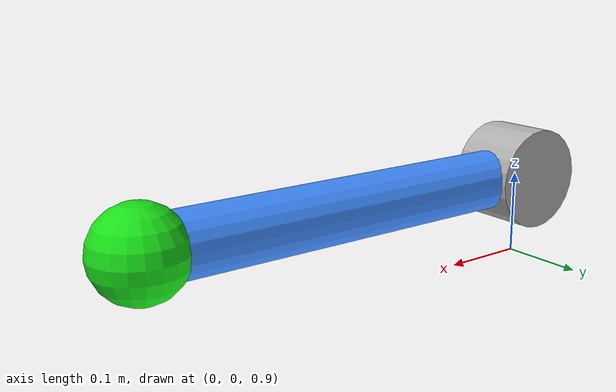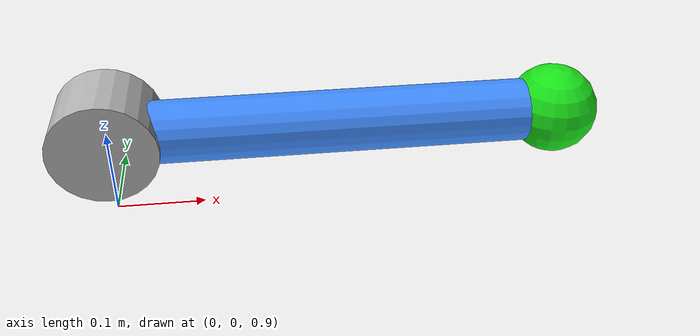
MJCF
<mujoco model="sim_plotter_example">
  <compiler autolimits="true"/>

  <!-- Gravity ON — so the torque required to maintain 1 rad/s varies with arm angle -->
  <option gravity="0 0 -9.81" timestep="0.002" integrator="implicitfast"/>

  <statistic center="0.25 0 0.5" extent="1.2" meansize="0.05"/>

  <visual>
    <headlight ambient="0.6 0.6 0.6" diffuse="0.3 0.3 0.3" specular="0.1 0.1 0.1"/>
    <map znear="0.005"/>
  </visual>

  <asset>
    <texture name="grid" type="2d" builtin="checker"
             rgb1="0.15 0.15 0.15" rgb2="0.25 0.25 0.25" width="512" height="512"/>
    <material name="grid" texture="grid" texrepeat="4 4" texuniform="true" reflectance="0.1"/>
    <material name="arm"  rgba="0.25 0.55 1.0 1.0"/>
    <material name="tip"  rgba="0.1 0.9 0.1 1.0"/>
    <material name="hub"  rgba="0.70 0.70 0.70 1.0"/>
  </asset>

  <!-- ── Declare plugins used in this model ─────────────────────────────────── -->
  <extension>
    <plugin plugin="MujocoRosUtils::ClockPublisher"/>

    <plugin plugin="MujocoRosUtils::SimPlotter">
      <instance name="arm_plotter">
        <config key="window_w"     value="1700"/>
        <config key="window_h"     value="700"/>
        <config key="update_every" value="5"/>
        <config key="num_plots"    value="3"/>

        <!-- Plot 0 — Kinematics: position + velocity (Y1), acceleration (Y2) -->
        <config key="plot0" value="title=Kinematics — position / velocity / acceleration;pos=tl 0 0 560 700;max_pts=1500"/>
        <config key="plot0_line0" value="label=position (rad);src=joint.arm_joint.position;color=0.12 0.47 0.71;y=1"/>
        <config key="plot0_line1" value="label=velocity (rad/s);src=joint.arm_joint.velocity;color=1.00 0.50 0.05;y=1"/>
        <config key="plot0_line2" value="label=acceleration (rad/s²);src=qacc.0;color=0.17 0.63 0.17;y=2"/>

        <!-- Plot 1 — Dynamics: torque + effort (Y1), ctrl command (Y2) -->
        <config key="plot1" value="title=Dynamics — torque / effort / ctrl command;pos=tc 0 0 560 700;max_pts=1500"/>
        <config key="plot1_line0" value="label=actuator force (Nm);src=actuator.arm_velocity.force;color=0.84 0.15 0.16;y=1"/>
        <config key="plot1_line1" value="label=joint effort (Nm);src=joint.arm_joint.effort;color=0.55 0.34 0.29;y=1"/>
        <config key="plot1_line2" value="label=ctrl command (rad/s);src=actuator.arm_velocity.ctrl;color=0.58 0.40 0.74;y=2"/>

        <!-- Plot 2 — Phase portrait: actuator force vs joint velocity (scatter) -->
        <config key="plot2" value="title=Phase Portrait — force vs velocity;pos=tr 0 0 560 700;max_pts=10000"/>
        <config key="plot2_line0" value="label=force vs velocity;type=scatter;src_x=joint.arm_joint.velocity;src=actuator.arm_velocity.force;color=1.0 0.6 0.1"/>
      </instance>
    </plugin>
  </extension>

  <!-- ── World ────────────────────────────────────────────────────────────── -->
  <worldbody>
    <plugin plugin="MujocoRosUtils::ClockPublisher">
      <config key="topic_name"   value="/clock"/>
      <config key="publish_rate" value="100"/>
      <config key="use_sim_time" value="true"/>
    </plugin>

    <light pos="0.5 -1 2" dir="-0.2 0.5 -1" directional="false"/>
    <light pos="-0.5 1 2" dir="0.2 -0.5 -1" directional="false"/>

    <geom name="floor" type="plane" material="grid" size="5 5 0.01" pos="0 0 0"/>

    <!-- Fixed shoulder hub at z=1.0; arm is 0.5 m long so the lowest tip
         position is z=0.5 m — well above the floor -->
    <body name="shoulder" pos="0 0 1.0">
      <geom name="hub" type="cylinder" size="0.06 0.04"
            material="hub" mass="0" euler="90 0 0"/>

      <body name="arm">
        <joint name="arm_joint" type="hinge" axis="0 1 0"
               damping="0.2" armature="0.01"/>

        <!-- Arm link: capsule from shoulder (0,0,0) to tip (0.5,0,0) -->
        <geom name="arm_link" type="capsule" fromto="0 0 0  0.5 0 0"
              size="0.035" material="arm" mass="1.0"/>

        <!-- Red tip sphere (visual only, mass=0) -->
        <geom name="arm_tip" type="sphere" size="0.05" pos="0.5 0 0"
              material="tip" mass="0"/>

        <!-- Site at tip for sensor / FK reference -->
        <site name="tip_site" pos="0.5 0 0" size="0.01"/>
      </body>
    </body>
  </worldbody>

  <!-- ── Actuator ──────────────────────────────────────────────────────────── -->
  <!--
    Velocity actuator:  applies torque = kv * (ctrl - current_vel)
    kv = 50 Nm·s/rad gives a snappy velocity response.
    Set ctrl = 1.0 to drive at 1 rad/s.
  -->
  <actuator>
    <velocity name="arm_velocity" joint="arm_joint" kv="50" ctrlrange="-10 10"/>
  </actuator>

  <!-- ── Keyframes ─────────────────────────────────────────────────────────── -->
  <!--
    Press Ctrl+R in simulate (or File → Reset) to load "spinning".
    This sets arm_velocity ctrl = 2.0 rad/s so the arm spins immediately.
  -->
  <keyframe>
    <key name="spinning" qpos="0" ctrl="20.0" qvel="20.0" time="0"/>
  </keyframe>

</mujoco>
